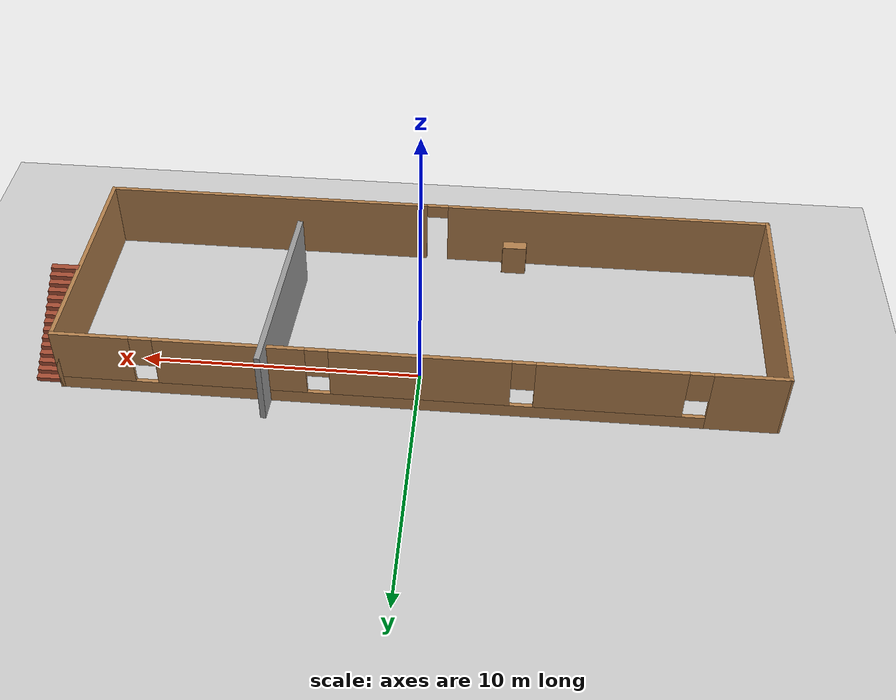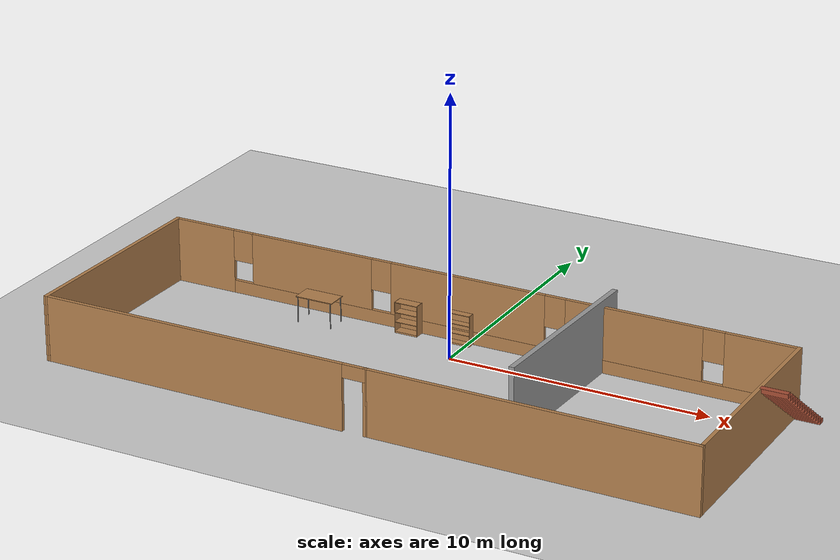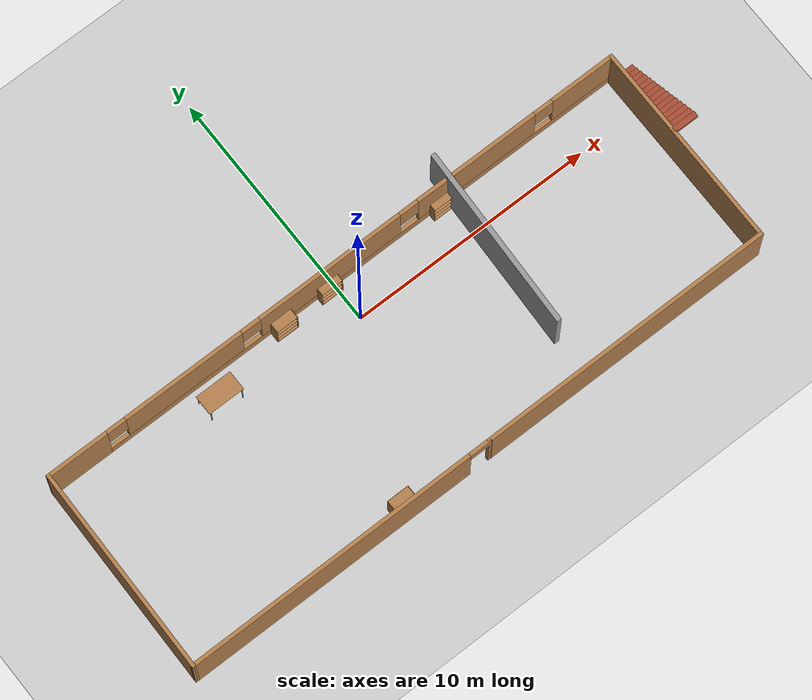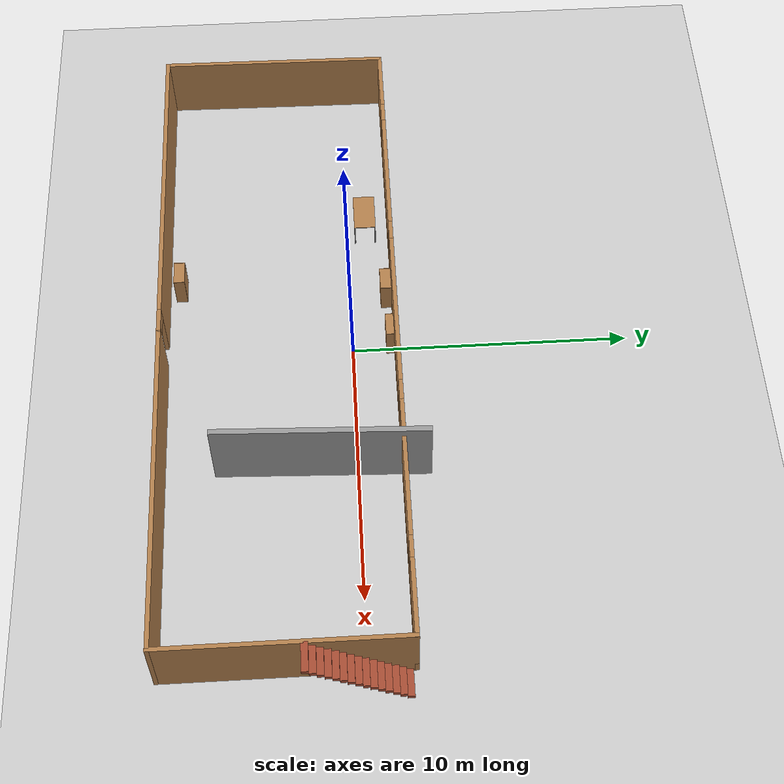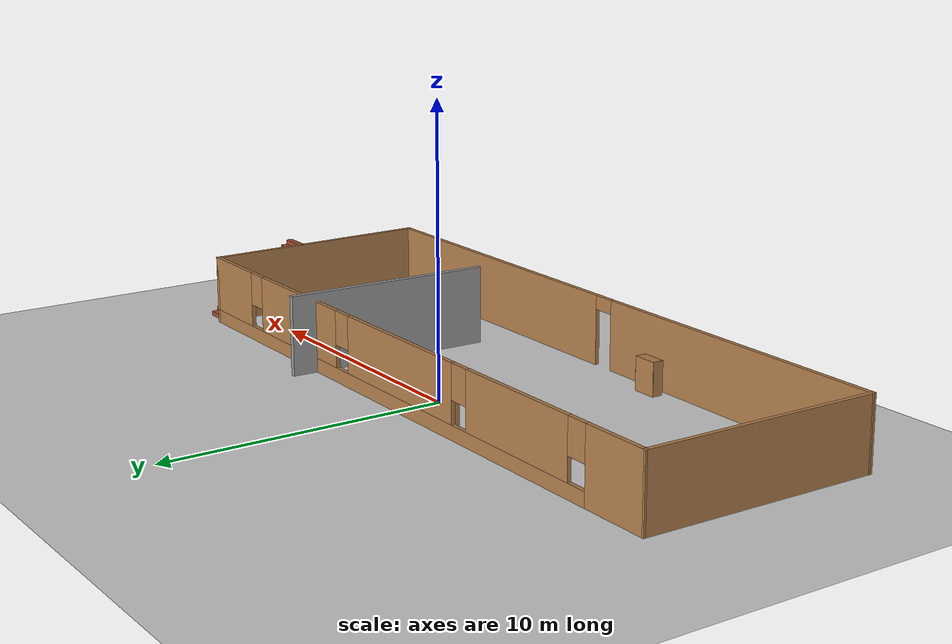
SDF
<sdf version="1.6">
 <world name="default">
  <light name="sun" type="directional">
   <pose>0 0 10 0 -0 0</pose>
   <diffuse>0.8 0.8 0.8 1</diffuse>
   <specular>0.2 0.2 0.2 1</specular>
   <attenuation>
    <range>1000</range>
    <constant>0.9</constant>
    <linear>0.01</linear>
    <quadratic>0.001</quadratic>
   </attenuation>
   <direction>-0.5 0.1 -0.9</direction>
  </light>
  <model name="ground_plane">
   <static>1</static>
   <link name="link">
    <collision name="collision">
     <geometry><plane><normal>0 0 1</normal><size>100 100</size></plane></geometry>
     <surface>
      <contact><collide_bitmask>65535</collide_bitmask></contact>
      <friction><ode><mu>100</mu><mu2>50</mu2></ode></friction>
     </surface>
    </collision>
    <visual name="visual">
     <cast_shadows>0</cast_shadows>
     <geometry><plane><normal>0 0 1</normal><size>100 100</size></plane></geometry>
     <material>
      <script><uri>file://media/materials/scripts/gazebo.material</uri><name>Gazebo/Grey</name></script>
     </material>
    </visual>
   </link>
  </model>
  <gravity>0 0 -9.8</gravity>
  <magnetic_field>6e-06 2.3e-05 -4.2e-05</magnetic_field>
  <atmosphere type="adiabatic"/>
  <physics name="default_physics" default="0" type="ode">
   <max_step_size>0.001</max_step_size>
   <real_time_factor>1</real_time_factor>
   <real_time_update_rate>1000</real_time_update_rate>
  </physics>
  <scene><ambient>0.4 0.4 0.4 1</ambient><background>0.7 0.7 0.7 1</background><shadows>1</shadows></scene>
  <audio><device>default</device></audio>
  <spherical_coordinates>
   <surface_model>EARTH_WGS84</surface_model>
   <latitude_deg>0</latitude_deg>
   <longitude_deg>0</longitude_deg>
   <elevation>0</elevation>
   <heading_deg>0</heading_deg>
  </spherical_coordinates>
  <model name="newbui">
   <pose>0.491175 -2.59264 0 0 -0 0</pose>
   <link name="Stairs_0">
    <visual name="Stairs_0_Visual_0">
     <pose>12.5196 3.9407 0.083333 0 -0 0</pose>
     <geometry><box><size>1 0.233333 0.166667</size></box></geometry>
     <material>
      <script><uri>file://media/materials/scripts/gazebo.material</uri><name>Gazebo/Bricks</name></script>
      <ambient>1 1 1 1</ambient>
     </material>
     <meta><layer>0</layer></meta>
    </visual>
    <collision name="Stairs_0_Collision_0">
     <geometry><box><size>1 0.233333 0.166667</size></box></geometry>
     <pose>12.5196 3.9407 0.083333 0 -0 0</pose>
    </collision>
    <visual name="Stairs_0_Visual_1">
     <pose>12.5196 3.70737 0.25 0 -0 0</pose>
     <geometry><box><size>1 0.233333 0.166667</size></box></geometry>
     <material>
      <script><uri>file://media/materials/scripts/gazebo.material</uri><name>Gazebo/Bricks</name></script>
      <ambient>1 1 1 1</ambient>
     </material>
     <meta><layer>0</layer></meta>
    </visual>
    <collision name="Stairs_0_Collision_1">
     <geometry><box><size>1 0.233333 0.166667</size></box></geometry>
     <pose>12.5196 3.70737 0.25 0 -0 0</pose>
    </collision>
    <visual name="Stairs_0_Visual_2">
     <pose>12.5196 3.47404 0.416667 0 -0 0</pose>
     <geometry><box><size>1 0.233333 0.166667</size></box></geometry>
     <material>
      <script><uri>file://media/materials/scripts/gazebo.material</uri><name>Gazebo/Bricks</name></script>
      <ambient>1 1 1 1</ambient>
     </material>
     <meta><layer>0</layer></meta>
    </visual>
    <collision name="Stairs_0_Collision_2">
     <geometry><box><size>1 0.233333 0.166667</size></box></geometry>
     <pose>12.5196 3.47404 0.416667 0 -0 0</pose>
    </collision>
    <visual name="Stairs_0_Visual_3">
     <pose>12.5196 3.2407 0.583333 0 -0 0</pose>
     <geometry><box><size>1 0.233333 0.166667</size></box></geometry>
     <material>
      <script><uri>file://media/materials/scripts/gazebo.material</uri><name>Gazebo/Bricks</name></script>
      <ambient>1 1 1 1</ambient>
     </material>
     <meta><layer>0</layer></meta>
    </visual>
    <collision name="Stairs_0_Collision_3">
     <geometry><box><size>1 0.233333 0.166667</size></box></geometry>
     <pose>12.5196 3.2407 0.583333 0 -0 0</pose>
    </collision>
    <visual name="Stairs_0_Visual_4">
     <pose>12.5196 3.00737 0.75 0 -0 0</pose>
     <geometry><box><size>1 0.233333 0.166667</size></box></geometry>
     <material>
      <script><uri>file://media/materials/scripts/gazebo.material</uri><name>Gazebo/Bricks</name></script>
      <ambient>1 1 1 1</ambient>
     </material>
     <meta><layer>0</layer></meta>
    </visual>
    <collision name="Stairs_0_Collision_4">
     <geometry><box><size>1 0.233333 0.166667</size></box></geometry>
     <pose>12.5196 3.00737 0.75 0 -0 0</pose>
    </collision>
    <visual name="Stairs_0_Visual_5">
     <pose>12.5196 2.77404 0.916667 0 -0 0</pose>
     <geometry><box><size>1 0.233333 0.166667</size></box></geometry>
     <material>
      <script><uri>file://media/materials/scripts/gazebo.material</uri><name>Gazebo/Bricks</name></script>
      <ambient>1 1 1 1</ambient>
     </material>
     <meta><layer>0</layer></meta>
    </visual>
    <collision name="Stairs_0_Collision_5">
     <geometry><box><size>1 0.233333 0.166667</size></box></geometry>
     <pose>12.5196 2.77404 0.916667 0 -0 0</pose>
    </collision>
    <visual name="Stairs_0_Visual_6">
     <pose>12.5196 2.5407 1.08333 0 -0 0</pose>
     <geometry><box><size>1 0.233333 0.166667</size></box></geometry>
     <material>
      <script><uri>file://media/materials/scripts/gazebo.material</uri><name>Gazebo/Bricks</name></script>
      <ambient>1 1 1 1</ambient>
     </material>
     <meta><layer>0</layer></meta>
    </visual>
    <collision name="Stairs_0_Collision_6">
     <geometry><box><size>1 0.233333 0.166667</size></box></geometry>
     <pose>12.5196 2.5407 1.08333 0 -0 0</pose>
    </collision>
    <visual name="Stairs_0_Visual_7">
     <pose>12.5196 2.30737 1.25 0 -0 0</pose>
     <geometry><box><size>1 0.233333 0.166667</size></box></geometry>
     <material>
      <script><uri>file://media/materials/scripts/gazebo.material</uri><name>Gazebo/Bricks</name></script>
      <ambient>1 1 1 1</ambient>
     </material>
     <meta><layer>0</layer></meta>
    </visual>
    <collision name="Stairs_0_Collision_7">
     <geometry><box><size>1 0.233333 0.166667</size></box></geometry>
     <pose>12.5196 2.30737 1.25 0 -0 0</pose>
    </collision>
    <visual name="Stairs_0_Visual_8">
     <pose>12.5196 2.07403 1.41667 0 -0 0</pose>
     <geometry><box><size>1 0.233333 0.166667</size></box></geometry>
     <material>
      <script><uri>file://media/materials/scripts/gazebo.material</uri><name>Gazebo/Bricks</name></script>
      <ambient>1 1 1 1</ambient>
     </material>
     <meta><layer>0</layer></meta>
    </visual>
    <collision name="Stairs_0_Collision_8">
     <geometry><box><size>1 0.233333 0.166667</size></box></geometry>
     <pose>12.5196 2.07403 1.41667 0 -0 0</pose>
    </collision>
    <visual name="Stairs_0_Visual_9">
     <pose>12.5196 1.8407 1.58333 0 -0 0</pose>
     <geometry><box><size>1 0.233333 0.166667</size></box></geometry>
     <material>
      <script><uri>file://media/materials/scripts/gazebo.material</uri><name>Gazebo/Bricks</name></script>
      <ambient>1 1 1 1</ambient>
     </material>
     <meta><layer>0</layer></meta>
    </visual>
    <collision name="Stairs_0_Collision_9">
     <geometry><box><size>1 0.233333 0.166667</size></box></geometry>
     <pose>12.5196 1.8407 1.58333 0 -0 0</pose>
    </collision>
    <visual name="Stairs_0_Visual_10">
     <pose>12.5196 1.60737 1.75 0 -0 0</pose>
     <geometry><box><size>1 0.233333 0.166667</size></box></geometry>
     <material>
      <script><uri>file://media/materials/scripts/gazebo.material</uri><name>Gazebo/Bricks</name></script>
      <ambient>1 1 1 1</ambient>
     </material>
     <meta><layer>0</layer></meta>
    </visual>
    <collision name="Stairs_0_Collision_10">
     <geometry><box><size>1 0.233333 0.166667</size></box></geometry>
     <pose>12.5196 1.60737 1.75 0 -0 0</pose>
    </collision>
    <visual name="Stairs_0_Visual_11">
     <pose>12.5196 1.37403 1.91667 0 -0 0</pose>
     <geometry><box><size>1 0.233333 0.166667</size></box></geometry>
     <material>
      <script><uri>file://media/materials/scripts/gazebo.material</uri><name>Gazebo/Bricks</name></script>
      <ambient>1 1 1 1</ambient>
     </material>
     <meta><layer>0</layer></meta>
    </visual>
    <collision name="Stairs_0_Collision_11">
     <geometry><box><size>1 0.233333 0.166667</size></box></geometry>
     <pose>12.5196 1.37403 1.91667 0 -0 0</pose>
    </collision>
    <visual name="Stairs_0_Visual_12">
     <pose>12.5196 1.1407 2.08333 0 -0 0</pose>
     <geometry><box><size>1 0.233333 0.166667</size></box></geometry>
     <material>
      <script><uri>file://media/materials/scripts/gazebo.material</uri><name>Gazebo/Bricks</name></script>
      <ambient>1 1 1 1</ambient>
     </material>
     <meta><layer>0</layer></meta>
    </visual>
    <collision name="Stairs_0_Collision_12">
     <geometry><box><size>1 0.233333 0.166667</size></box></geometry>
     <pose>12.5196 1.1407 2.08333 0 -0 0</pose>
    </collision>
    <visual name="Stairs_0_Visual_13">
     <pose>12.5196 0.907368 2.25 0 -0 0</pose>
     <geometry><box><size>1 0.233333 0.166667</size></box></geometry>
     <material>
      <script><uri>file://media/materials/scripts/gazebo.material</uri><name>Gazebo/Bricks</name></script>
      <ambient>1 1 1 1</ambient>
     </material>
     <meta><layer>0</layer></meta>
    </visual>
    <collision name="Stairs_0_Collision_13">
     <geometry><box><size>1 0.233333 0.166667</size></box></geometry>
     <pose>12.5196 0.907368 2.25 0 -0 0</pose>
    </collision>
    <visual name="Stairs_0_Visual_14">
     <pose>12.5196 0.674035 2.41667 0 -0 0</pose>
     <geometry><box><size>1 0.233333 0.166667</size></box></geometry>
     <material>
      <script><uri>file://media/materials/scripts/gazebo.material</uri><name>Gazebo/Bricks</name></script>
      <ambient>1 1 1 1</ambient>
     </material>
     <meta><layer>0</layer></meta>
    </visual>
    <collision name="Stairs_0_Collision_14">
     <geometry><box><size>1 0.233333 0.166667</size></box></geometry>
     <pose>12.5196 0.674035 2.41667 0 -0 0</pose>
    </collision>
   </link>
   <link name="Wall_1">
    <pose>-0.418661 4.175 0 0 -0 0</pose>
    <visual name="Wall_1_Visual_0">
     <pose>-11.2143 0 1.25 0 -0 0</pose>
     <geometry><box><size>2.57136 0.15 2.5</size></box></geometry>
     <material>
      <script><uri>file://media/materials/scripts/gazebo.material</uri><name>Gazebo/Wood</name></script>
      <ambient>1 1 1 1</ambient>
     </material>
     <meta><layer>0</layer></meta>
    </visual>
    <collision name="Wall_1_Collision_0">
     <geometry><box><size>2.57136 0.15 2.5</size></box></geometry>
     <pose>-11.2143 0 1.25 0 -0 0</pose>
    </collision>
    <visual name="Wall_1_Visual_1">
     <pose>1.28568 0 0.25 0 -0 0</pose>
     <geometry><box><size>22.4286 0.15 0.5</size></box></geometry>
     <material>
      <script><uri>file://media/materials/scripts/gazebo.material</uri><name>Gazebo/Wood</name></script>
      <ambient>1 1 1 1</ambient>
     </material>
     <meta><layer>0</layer></meta>
    </visual>
    <collision name="Wall_1_Collision_1">
     <geometry><box><size>22.4286 0.15 0.5</size></box></geometry>
     <pose>1.28568 0 0.25 0 -0 0</pose>
    </collision>
    <visual name="Wall_1_Visual_2">
     <pose>-6.60212 0 1.5 0 -0 0</pose>
     <geometry><box><size>5.05305 0.15 2</size></box></geometry>
     <material>
      <script><uri>file://media/materials/scripts/gazebo.material</uri><name>Gazebo/Wood</name></script>
      <ambient>1 1 1 1</ambient>
     </material>
     <meta><layer>0</layer></meta>
    </visual>
    <collision name="Wall_1_Collision_2">
     <geometry><box><size>5.05305 0.15 2</size></box></geometry>
     <pose>-6.60212 0 1.5 0 -0 0</pose>
    </collision>
    <visual name="Wall_1_Visual_3">
     <pose>-0.185891 0 1.5 0 -0 0</pose>
     <geometry><box><size>6.17941 0.15 2</size></box></geometry>
     <material>
      <script><uri>file://media/materials/scripts/gazebo.material</uri><name>Gazebo/Wood</name></script>
      <ambient>1 1 1 1</ambient>
     </material>
     <meta><layer>0</layer></meta>
    </visual>
    <collision name="Wall_1_Collision_3">
     <geometry><box><size>6.17941 0.15 2</size></box></geometry>
     <pose>-0.185891 0 1.5 0 -0 0</pose>
    </collision>
    <visual name="Wall_1_Visual_4">
     <pose>6.32085 0 1.5 0 -0 0</pose>
     <geometry><box><size>5.23407 0.15 2</size></box></geometry>
     <material>
      <script><uri>file://media/materials/scripts/gazebo.material</uri><name>Gazebo/Wood</name></script>
      <ambient>1 1 1 1</ambient>
     </material>
     <meta><layer>0</layer></meta>
    </visual>
    <collision name="Wall_1_Collision_4">
     <geometry><box><size>5.23407 0.15 2</size></box></geometry>
     <pose>6.32085 0 1.5 0 -0 0</pose>
    </collision>
    <visual name="Wall_1_Visual_5">
     <pose>11.1189 0 1.5 0 -0 0</pose>
     <geometry><box><size>2.76212 0.15 2</size></box></geometry>
     <material>
      <script><uri>file://media/materials/scripts/gazebo.material</uri><name>Gazebo/Wood</name></script>
      <ambient>1 1 1 1</ambient>
     </material>
     <meta><layer>0</layer></meta>
    </visual>
    <collision name="Wall_1_Collision_5">
     <geometry><box><size>2.76212 0.15 2</size></box></geometry>
     <pose>11.1189 0 1.5 0 -0 0</pose>
    </collision>
    <visual name="Wall_1_Visual_6">
     <pose>-9.52864 0 1.9 0 -0 0</pose>
     <geometry><box><size>0.8 0.15 1.2</size></box></geometry>
     <material>
      <script><uri>file://media/materials/scripts/gazebo.material</uri><name>Gazebo/Wood</name></script>
      <ambient>1 1 1 1</ambient>
     </material>
     <meta><layer>0</layer></meta>
    </visual>
    <collision name="Wall_1_Collision_6">
     <geometry><box><size>0.8 0.15 1.2</size></box></geometry>
     <pose>-9.52864 0 1.9 0 -0 0</pose>
    </collision>
    <visual name="Wall_1_Visual_7">
     <pose>-3.6756 0 1.9 0 -0 0</pose>
     <geometry><box><size>0.8 0.15 1.2</size></box></geometry>
     <material>
      <script><uri>file://media/materials/scripts/gazebo.material</uri><name>Gazebo/Wood</name></script>
      <ambient>1 1 1 1</ambient>
     </material>
     <meta><layer>0</layer></meta>
    </visual>
    <collision name="Wall_1_Collision_7">
     <geometry><box><size>0.8 0.15 1.2</size></box></geometry>
     <pose>-3.6756 0 1.9 0 -0 0</pose>
    </collision>
    <visual name="Wall_1_Visual_8">
     <pose>3.30381 0 1.9 0 -0 0</pose>
     <geometry><box><size>0.8 0.15 1.2</size></box></geometry>
     <material>
      <script><uri>file://media/materials/scripts/gazebo.material</uri><name>Gazebo/Wood</name></script>
      <ambient>1 1 1 1</ambient>
     </material>
     <meta><layer>0</layer></meta>
    </visual>
    <collision name="Wall_1_Collision_8">
     <geometry><box><size>0.8 0.15 1.2</size></box></geometry>
     <pose>3.30381 0 1.9 0 -0 0</pose>
    </collision>
    <visual name="Wall_1_Visual_9">
     <pose>9.33788 0 1.9 0 -0 0</pose>
     <geometry><box><size>0.8 0.15 1.2</size></box></geometry>
     <material>
      <script><uri>file://media/materials/scripts/gazebo.material</uri><name>Gazebo/Wood</name></script>
      <ambient>1 1 1 1</ambient>
     </material>
     <meta><layer>0</layer></meta>
    </visual>
    <collision name="Wall_1_Collision_9">
     <geometry><box><size>0.8 0.15 1.2</size></box></geometry>
     <pose>9.33788 0 1.9 0 -0 0</pose>
    </collision>
   </link>
   <link name="Wall_2">
    <collision name="Wall_2_Collision">
     <geometry><box><size>8.5 0.15 2.5</size></box></geometry>
     <pose>0 0 1.25 0 -0 0</pose>
    </collision>
    <visual name="Wall_2_Visual">
     <pose>0 0 1.25 0 -0 0</pose>
     <geometry><box><size>8.5 0.15 2.5</size></box></geometry>
     <material>
      <script><uri>file://media/materials/scripts/gazebo.material</uri><name>Gazebo/Wood</name></script>
      <ambient>1 1 1 1</ambient>
     </material>
     <meta><layer>0</layer></meta>
    </visual>
    <pose>12.0063 0 0 0 -0 -1.5708</pose>
   </link>
   <link name="Wall_3">
    <collision name="Wall_3_Collision">
     <geometry><box><size>12.25 0.15 2.5</size></box></geometry>
     <pose>0 0 1.25 0 -0 0</pose>
    </collision>
    <visual name="Wall_3_Visual">
     <pose>0 0 1.25 0 -0 0</pose>
     <geometry><box><size>12.25 0.15 2.5</size></box></geometry>
     <material>
      <script><uri>file://media/materials/scripts/gazebo.material</uri><name>Gazebo/Wood</name></script>
      <ambient>1 1 1 1</ambient>
     </material>
     <meta><layer>0</layer></meta>
    </visual>
    <pose>5.95634 -4.175 0 0 -0 3.14159</pose>
   </link>
   <link name="Wall_4">
    <pose>-6.51866 -4.175 0 0 -0 3.14159</pose>
    <visual name="Wall_4_Visual_0">
     <pose>-6.47731 0 1.25 0 -0 0</pose>
     <geometry><box><size>0.045381 0.15 2.5</size></box></geometry>
     <material>
      <script><uri>file://media/materials/scripts/gazebo.material</uri><name>Gazebo/Wood</name></script>
      <ambient>1 1 1 1</ambient>
     </material>
     <meta><layer>0</layer></meta>
    </visual>
    <collision name="Wall_4_Collision_0">
     <geometry><box><size>0.045381 0.15 2.5</size></box></geometry>
     <pose>-6.47731 0 1.25 0 -0 0</pose>
    </collision>
    <visual name="Wall_4_Visual_1">
     <pose>0.47269 0 1.25 0 -0 0</pose>
     <geometry><box><size>12.0546 0.15 2.5</size></box></geometry>
     <material>
      <script><uri>file://media/materials/scripts/gazebo.material</uri><name>Gazebo/Wood</name></script>
      <ambient>1 1 1 1</ambient>
     </material>
     <meta><layer>0</layer></meta>
    </visual>
    <collision name="Wall_4_Collision_1">
     <geometry><box><size>12.0546 0.15 2.5</size></box></geometry>
     <pose>0.47269 0 1.25 0 -0 0</pose>
    </collision>
    <visual name="Wall_4_Visual_2">
     <pose>-6.00462 0 2.25 0 -0 0</pose>
     <geometry><box><size>0.9 0.15 0.5</size></box></geometry>
     <material>
      <script><uri>file://media/materials/scripts/gazebo.material</uri><name>Gazebo/Wood</name></script>
      <ambient>1 1 1 1</ambient>
     </material>
     <meta><layer>0</layer></meta>
    </visual>
    <collision name="Wall_4_Collision_2">
     <geometry><box><size>0.9 0.15 0.5</size></box></geometry>
     <pose>-6.00462 0 2.25 0 -0 0</pose>
    </collision>
   </link>
   <link name="Wall_6">
    <collision name="Wall_6_Collision">
     <geometry><box><size>8.5006 0.15 2.5</size></box></geometry>
     <pose>0 0 1.25 0 -0 0</pose>
    </collision>
    <visual name="Wall_6_Visual">
     <pose>0 0 1.25 0 -0 0</pose>
     <geometry><box><size>8.5006 0.15 2.5</size></box></geometry>
     <material>
      <script><uri>file://media/materials/scripts/gazebo.material</uri><name>Gazebo/Wood</name></script>
      <ambient>1 1 1 1</ambient>
     </material>
     <meta><layer>0</layer></meta>
    </visual>
    <pose>-12.8937 0 0 0 -0 -1.58277</pose>
   </link>
   <static>1</static>
  </model>
  <model name="table">
   <static>1</static>
   <link name="link">
    <collision name="surface">
     <pose>0 0 1 0 -0 0</pose>
     <geometry><box><size>1.5 0.8 0.03</size></box></geometry>
     <surface><friction><ode><mu>0.6</mu><mu2>0.6</mu2></ode></friction></surface>
    </collision>
    <visual name="visual1">
     <pose>0 0 1 0 -0 0</pose>
     <geometry><box><size>1.5 0.8 0.03</size></box></geometry>
     <material>
      <script><uri>file://media/materials/scripts/gazebo.material</uri><name>Gazebo/Wood</name></script>
     </material>
    </visual>
    <collision name="front_left_leg">
     <pose>0.68 0.38 0.5 0 -0 0</pose>
     <geometry><cylinder><radius>0.02</radius><length>1</length></cylinder></geometry>
    </collision>
    <visual name="front_left_leg">
     <pose>0.68 0.38 0.5 0 -0 0</pose>
     <geometry><cylinder><radius>0.02</radius><length>1</length></cylinder></geometry>
     <material>
      <script><uri>file://media/materials/scripts/gazebo.material</uri><name>Gazebo/Grey</name></script>
     </material>
    </visual>
    <collision name="front_right_leg">
     <pose>0.68 -0.38 0.5 0 -0 0</pose>
     <geometry><cylinder><radius>0.02</radius><length>1</length></cylinder></geometry>
    </collision>
    <visual name="front_right_leg">
     <pose>0.68 -0.38 0.5 0 -0 0</pose>
     <geometry><cylinder><radius>0.02</radius><length>1</length></cylinder></geometry>
     <material>
      <script><uri>file://media/materials/scripts/gazebo.material</uri><name>Gazebo/Grey</name></script>
     </material>
    </visual>
    <collision name="back_right_leg">
     <pose>-0.68 -0.38 0.5 0 -0 0</pose>
     <geometry><cylinder><radius>0.02</radius><length>1</length></cylinder></geometry>
    </collision>
    <visual name="back_right_leg">
     <pose>-0.68 -0.38 0.5 0 -0 0</pose>
     <geometry><cylinder><radius>0.02</radius><length>1</length></cylinder></geometry>
     <material>
      <script><uri>file://media/materials/scripts/gazebo.material</uri><name>Gazebo/Grey</name></script>
     </material>
    </visual>
    <collision name="back_left_leg">
     <pose>-0.68 0.38 0.5 0 -0 0</pose>
     <geometry><cylinder><radius>0.02</radius><length>1</length></cylinder></geometry>
    </collision>
    <visual name="back_left_leg">
     <pose>-0.68 0.38 0.5 0 -0 0</pose>
     <geometry><cylinder><radius>0.02</radius><length>1</length></cylinder></geometry>
     <material>
      <script><uri>file://media/materials/scripts/gazebo.material</uri><name>Gazebo/Grey</name></script>
     </material>
    </visual>
   </link>
   <pose>-5.71893 0.661764 0 0 -0 0</pose>
  </model>
  <model name="bookshelf">
   <static>1</static>
   <link name="link">
    <inertial><mass>1</mass></inertial>
    <collision name="back">
     <pose>0 0.005 0.6 0 -0 0</pose>
     <geometry><box><size>0.9 0.01 1.2</size></box></geometry>
    </collision>
    <visual name="visual1">
     <pose>0 0.005 0.6 0 -0 0</pose>
     <geometry><box><size>0.9 0.01 1.2</size></box></geometry>
     <material>
      <script><uri>file://media/materials/scripts/gazebo.material</uri><name>Gazebo/Wood</name></script>
     </material>
    </visual>
    <collision name="left_side">
     <pose>0.45 -0.195 0.6 0 -0 0</pose>
     <geometry><box><size>0.02 0.4 1.2</size></box></geometry>
    </collision>
    <visual name="visual2">
     <pose>0.45 -0.195 0.6 0 -0 0</pose>
     <geometry><box><size>0.02 0.4 1.2</size></box></geometry>
     <material>
      <script><uri>file://media/materials/scripts/gazebo.material</uri><name>Gazebo/Wood</name></script>
     </material>
    </visual>
    <collision name="right_side">
     <pose>-0.45 -0.195 0.6 0 -0 0</pose>
     <geometry><box><size>0.02 0.4 1.2</size></box></geometry>
    </collision>
    <visual name="visual3">
     <pose>-0.45 -0.195 0.6 0 -0 0</pose>
     <geometry><box><size>0.02 0.4 1.2</size></box></geometry>
     <material>
      <script><uri>file://media/materials/scripts/gazebo.material</uri><name>Gazebo/Wood</name></script>
     </material>
    </visual>
    <collision name="bottom">
     <pose>0 -0.195 0.03 0 -0 0</pose>
     <geometry><box><size>0.88 0.4 0.06</size></box></geometry>
    </collision>
    <visual name="visual4">
     <pose>0 -0.195 0.03 0 -0 0</pose>
     <geometry><box><size>0.88 0.4 0.06</size></box></geometry>
     <material>
      <script><uri>file://media/materials/scripts/gazebo.material</uri><name>Gazebo/Wood</name></script>
     </material>
    </visual>
    <collision name="top">
     <pose>0 -0.195 1.19 0 -0 0</pose>
     <geometry><box><size>0.88 0.4 0.02</size></box></geometry>
    </collision>
    <visual name="visual5">
     <pose>0 -0.195 1.19 0 -0 0</pose>
     <geometry><box><size>0.88 0.4 0.02</size></box></geometry>
     <material>
      <script><uri>file://media/materials/scripts/gazebo.material</uri><name>Gazebo/Wood</name></script>
     </material>
    </visual>
    <collision name="low_shelf">
     <pose>0 -0.195 0.43 0 -0 0</pose>
     <geometry><box><size>0.88 0.4 0.02</size></box></geometry>
    </collision>
    <visual name="visual6">
     <pose>0 -0.195 0.43 0 -0 0</pose>
     <geometry><box><size>0.88 0.4 0.02</size></box></geometry>
     <material>
      <script><uri>file://media/materials/scripts/gazebo.material</uri><name>Gazebo/Wood</name></script>
     </material>
    </visual>
    <collision name="high_shelf">
     <pose>0 -0.195 0.8 0 -0 0</pose>
     <geometry><box><size>0.88 0.4 0.02</size></box></geometry>
    </collision>
    <visual name="visual7">
     <pose>0 -0.195 0.8 0 -0 0</pose>
     <geometry><box><size>0.88 0.4 0.02</size></box></geometry>
     <material>
      <script><uri>file://media/materials/scripts/gazebo.material</uri><name>Gazebo/Wood</name></script>
     </material>
    </visual>
   </link>
   <pose>-3.08032 -6.07032 0 0 -0 0</pose>
  </model>
  <model name="bookshelf_clone">
   <static>1</static>
   <link name="link">
    <inertial><mass>1</mass></inertial>
    <collision name="back">
     <pose>0 0.005 0.6 0 -0 0</pose>
     <geometry><box><size>0.9 0.01 1.2</size></box></geometry>
    </collision>
    <visual name="visual1">
     <pose>0 0.005 0.6 0 -0 0</pose>
     <geometry><box><size>0.9 0.01 1.2</size></box></geometry>
     <material>
      <script><uri>file://media/materials/scripts/gazebo.material</uri><name>Gazebo/Wood</name></script>
     </material>
    </visual>
    <collision name="left_side">
     <pose>0.45 -0.195 0.6 0 -0 0</pose>
     <geometry><box><size>0.02 0.4 1.2</size></box></geometry>
    </collision>
    <visual name="visual2">
     <pose>0.45 -0.195 0.6 0 -0 0</pose>
     <geometry><box><size>0.02 0.4 1.2</size></box></geometry>
     <material>
      <script><uri>file://media/materials/scripts/gazebo.material</uri><name>Gazebo/Wood</name></script>
     </material>
    </visual>
    <collision name="right_side">
     <pose>-0.45 -0.195 0.6 0 -0 0</pose>
     <geometry><box><size>0.02 0.4 1.2</size></box></geometry>
    </collision>
    <visual name="visual3">
     <pose>-0.45 -0.195 0.6 0 -0 0</pose>
     <geometry><box><size>0.02 0.4 1.2</size></box></geometry>
     <material>
      <script><uri>file://media/materials/scripts/gazebo.material</uri><name>Gazebo/Wood</name></script>
     </material>
    </visual>
    <collision name="bottom">
     <pose>0 -0.195 0.03 0 -0 0</pose>
     <geometry><box><size>0.88 0.4 0.06</size></box></geometry>
    </collision>
    <visual name="visual4">
     <pose>0 -0.195 0.03 0 -0 0</pose>
     <geometry><box><size>0.88 0.4 0.06</size></box></geometry>
     <material>
      <script><uri>file://media/materials/scripts/gazebo.material</uri><name>Gazebo/Wood</name></script>
     </material>
    </visual>
    <collision name="top">
     <pose>0 -0.195 1.19 0 -0 0</pose>
     <geometry><box><size>0.88 0.4 0.02</size></box></geometry>
    </collision>
    <visual name="visual5">
     <pose>0 -0.195 1.19 0 -0 0</pose>
     <geometry><box><size>0.88 0.4 0.02</size></box></geometry>
     <material>
      <script><uri>file://media/materials/scripts/gazebo.material</uri><name>Gazebo/Wood</name></script>
     </material>
    </visual>
    <collision name="low_shelf">
     <pose>0 -0.195 0.43 0 -0 0</pose>
     <geometry><box><size>0.88 0.4 0.02</size></box></geometry>
    </collision>
    <visual name="visual6">
     <pose>0 -0.195 0.43 0 -0 0</pose>
     <geometry><box><size>0.88 0.4 0.02</size></box></geometry>
     <material>
      <script><uri>file://media/materials/scripts/gazebo.material</uri><name>Gazebo/Wood</name></script>
     </material>
    </visual>
    <collision name="high_shelf">
     <pose>0 -0.195 0.8 0 -0 0</pose>
     <geometry><box><size>0.88 0.4 0.02</size></box></geometry>
    </collision>
    <visual name="visual7">
     <pose>0 -0.195 0.8 0 -0 0</pose>
     <geometry><box><size>0.88 0.4 0.02</size></box></geometry>
     <material>
      <script><uri>file://media/materials/scripts/gazebo.material</uri><name>Gazebo/Wood</name></script>
     </material>
    </visual>
   </link>
   <pose>-2.37555 1.50233 0 0 -0 0</pose>
  </model>
  <model name="bookshelf_clone_0">
   <static>1</static>
   <link name="link">
    <inertial><mass>1</mass></inertial>
    <collision name="back">
     <pose>0 0.005 0.6 0 -0 0</pose>
     <geometry><box><size>0.9 0.01 1.2</size></box></geometry>
    </collision>
    <visual name="visual1">
     <pose>0 0.005 0.6 0 -0 0</pose>
     <geometry><box><size>0.9 0.01 1.2</size></box></geometry>
     <material>
      <script><uri>file://media/materials/scripts/gazebo.material</uri><name>Gazebo/Wood</name></script>
     </material>
    </visual>
    <collision name="left_side">
     <pose>0.45 -0.195 0.6 0 -0 0</pose>
     <geometry><box><size>0.02 0.4 1.2</size></box></geometry>
    </collision>
    <visual name="visual2">
     <pose>0.45 -0.195 0.6 0 -0 0</pose>
     <geometry><box><size>0.02 0.4 1.2</size></box></geometry>
     <material>
      <script><uri>file://media/materials/scripts/gazebo.material</uri><name>Gazebo/Wood</name></script>
     </material>
    </visual>
    <collision name="right_side">
     <pose>-0.45 -0.195 0.6 0 -0 0</pose>
     <geometry><box><size>0.02 0.4 1.2</size></box></geometry>
    </collision>
    <visual name="visual3">
     <pose>-0.45 -0.195 0.6 0 -0 0</pose>
     <geometry><box><size>0.02 0.4 1.2</size></box></geometry>
     <material>
      <script><uri>file://media/materials/scripts/gazebo.material</uri><name>Gazebo/Wood</name></script>
     </material>
    </visual>
    <collision name="bottom">
     <pose>0 -0.195 0.03 0 -0 0</pose>
     <geometry><box><size>0.88 0.4 0.06</size></box></geometry>
    </collision>
    <visual name="visual4">
     <pose>0 -0.195 0.03 0 -0 0</pose>
     <geometry><box><size>0.88 0.4 0.06</size></box></geometry>
     <material>
      <script><uri>file://media/materials/scripts/gazebo.material</uri><name>Gazebo/Wood</name></script>
     </material>
    </visual>
    <collision name="top">
     <pose>0 -0.195 1.19 0 -0 0</pose>
     <geometry><box><size>0.88 0.4 0.02</size></box></geometry>
    </collision>
    <visual name="visual5">
     <pose>0 -0.195 1.19 0 -0 0</pose>
     <geometry><box><size>0.88 0.4 0.02</size></box></geometry>
     <material>
      <script><uri>file://media/materials/scripts/gazebo.material</uri><name>Gazebo/Wood</name></script>
     </material>
    </visual>
    <collision name="low_shelf">
     <pose>0 -0.195 0.43 0 -0 0</pose>
     <geometry><box><size>0.88 0.4 0.02</size></box></geometry>
    </collision>
    <visual name="visual6">
     <pose>0 -0.195 0.43 0 -0 0</pose>
     <geometry><box><size>0.88 0.4 0.02</size></box></geometry>
     <material>
      <script><uri>file://media/materials/scripts/gazebo.material</uri><name>Gazebo/Wood</name></script>
     </material>
    </visual>
    <collision name="high_shelf">
     <pose>0 -0.195 0.8 0 -0 0</pose>
     <geometry><box><size>0.88 0.4 0.02</size></box></geometry>
    </collision>
    <visual name="visual7">
     <pose>0 -0.195 0.8 0 -0 0</pose>
     <geometry><box><size>0.88 0.4 0.02</size></box></geometry>
     <material>
      <script><uri>file://media/materials/scripts/gazebo.material</uri><name>Gazebo/Wood</name></script>
     </material>
    </visual>
   </link>
   <pose>-0.301254 1.60995 0 0 -0 0</pose>
  </model>
  <model name="bookshelf_clone_1">
   <static>1</static>
   <link name="link">
    <inertial><mass>1</mass></inertial>
    <collision name="back">
     <pose>0 0.005 0.6 0 -0 0</pose>
     <geometry><box><size>0.9 0.01 1.2</size></box></geometry>
    </collision>
    <visual name="visual1">
     <pose>0 0.005 0.6 0 -0 0</pose>
     <geometry><box><size>0.9 0.01 1.2</size></box></geometry>
     <material>
      <script><uri>file://media/materials/scripts/gazebo.material</uri><name>Gazebo/Wood</name></script>
     </material>
    </visual>
    <collision name="left_side">
     <pose>0.45 -0.195 0.6 0 -0 0</pose>
     <geometry><box><size>0.02 0.4 1.2</size></box></geometry>
    </collision>
    <visual name="visual2">
     <pose>0.45 -0.195 0.6 0 -0 0</pose>
     <geometry><box><size>0.02 0.4 1.2</size></box></geometry>
     <material>
      <script><uri>file://media/materials/scripts/gazebo.material</uri><name>Gazebo/Wood</name></script>
     </material>
    </visual>
    <collision name="right_side">
     <pose>-0.45 -0.195 0.6 0 -0 0</pose>
     <geometry><box><size>0.02 0.4 1.2</size></box></geometry>
    </collision>
    <visual name="visual3">
     <pose>-0.45 -0.195 0.6 0 -0 0</pose>
     <geometry><box><size>0.02 0.4 1.2</size></box></geometry>
     <material>
      <script><uri>file://media/materials/scripts/gazebo.material</uri><name>Gazebo/Wood</name></script>
     </material>
    </visual>
    <collision name="bottom">
     <pose>0 -0.195 0.03 0 -0 0</pose>
     <geometry><box><size>0.88 0.4 0.06</size></box></geometry>
    </collision>
    <visual name="visual4">
     <pose>0 -0.195 0.03 0 -0 0</pose>
     <geometry><box><size>0.88 0.4 0.06</size></box></geometry>
     <material>
      <script><uri>file://media/materials/scripts/gazebo.material</uri><name>Gazebo/Wood</name></script>
     </material>
    </visual>
    <collision name="top">
     <pose>0 -0.195 1.19 0 -0 0</pose>
     <geometry><box><size>0.88 0.4 0.02</size></box></geometry>
    </collision>
    <visual name="visual5">
     <pose>0 -0.195 1.19 0 -0 0</pose>
     <geometry><box><size>0.88 0.4 0.02</size></box></geometry>
     <material>
      <script><uri>file://media/materials/scripts/gazebo.material</uri><name>Gazebo/Wood</name></script>
     </material>
    </visual>
    <collision name="low_shelf">
     <pose>0 -0.195 0.43 0 -0 0</pose>
     <geometry><box><size>0.88 0.4 0.02</size></box></geometry>
    </collision>
    <visual name="visual6">
     <pose>0 -0.195 0.43 0 -0 0</pose>
     <geometry><box><size>0.88 0.4 0.02</size></box></geometry>
     <material>
      <script><uri>file://media/materials/scripts/gazebo.material</uri><name>Gazebo/Wood</name></script>
     </material>
    </visual>
    <collision name="high_shelf">
     <pose>0 -0.195 0.8 0 -0 0</pose>
     <geometry><box><size>0.88 0.4 0.02</size></box></geometry>
    </collision>
    <visual name="visual7">
     <pose>0 -0.195 0.8 0 -0 0</pose>
     <geometry><box><size>0.88 0.4 0.02</size></box></geometry>
     <material>
      <script><uri>file://media/materials/scripts/gazebo.material</uri><name>Gazebo/Wood</name></script>
     </material>
    </visual>
   </link>
   <pose>4.74018 1.62163 0 0 -0 0</pose>
  </model>
  <model name="grey_wall">
   <static>1</static>
   <link name="link">
    <pose>0 0 1.4 0 -0 0</pose>
    <collision name="collision"><geometry><box><size>7.5 0.2 2.8</size></box></geometry></collision>
    <visual name="visual">
     <cast_shadows>0</cast_shadows>
     <geometry><box><size>7.5 0.2 2.8</size></box></geometry>
     <material>
      <script>
       <uri>model://grey_wall/materials/scripts</uri>
       <uri>model://grey_wall/materials/textures</uri>
       <name>vrc/grey_wall</name>
      </script>
     </material>
    </visual>
   </link>
   <pose>5.05991 -1.21217 0 0 0 -1.61076</pose>
  </model>
 </world>
</sdf>
